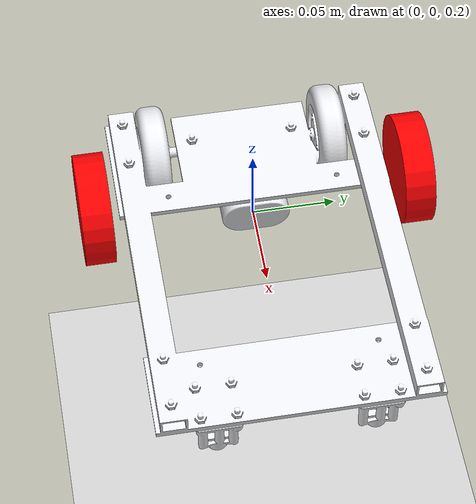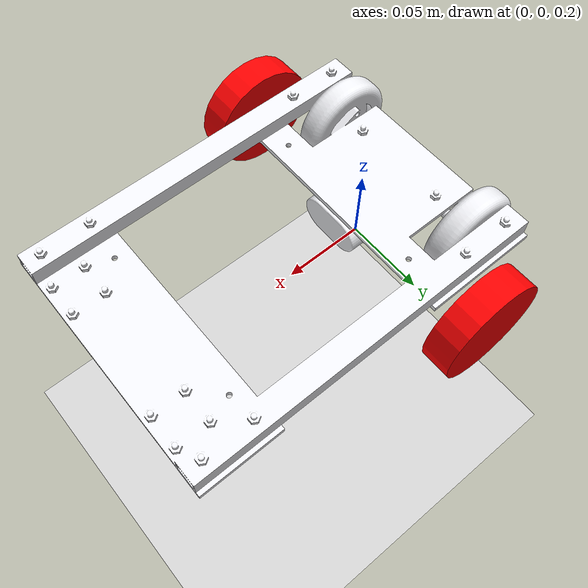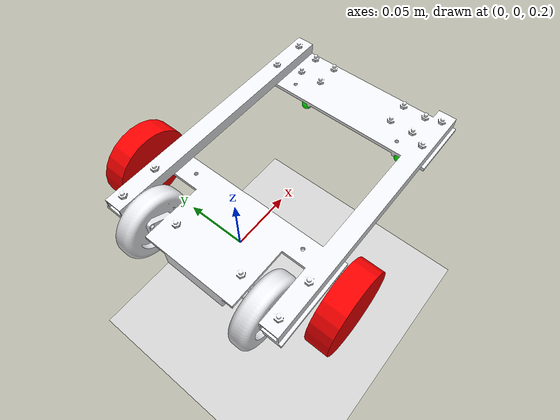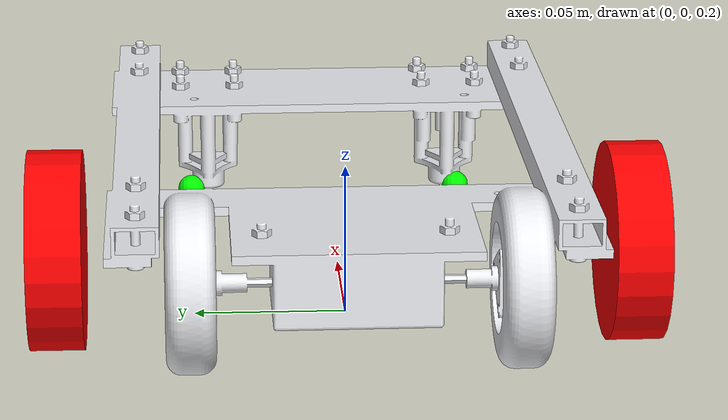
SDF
<?xml version="1.0" ?>
<sdf version="1.8"> <!--xmlとsdfのバージョン定義-->
    <world name="WorldDemo"> <!--ワールドの内容は全てこのタグの中に-->
        <physics name="1ms" type="ode">
            <max_step_size>0.001</max_step_size> <!--最大何秒ごとにシミュレートするか（小さいほど正確なシミュレーションになる）-->
            <real_time_factor>1.0</real_time_factor> <!--現実時間との比率-->
        </physics>
        <plugin
            filename="libignition-gazebo-physics-system.so"
            name="ignition::gazebo::systems::Physics">
        </plugin> <!--動力学のシミュレーションに必要-->
        <plugin
            filename="libignition-gazebo-user-commands-system.so"
            name="ignition::gazebo::systems::UserCommands">
        </plugin> <!--ユーザーコマンドを利用可能に-->
        <plugin
            filename="libignition-gazebo-scene-broadcaster-system.so"
            name="ignition::gazebo::systems::SceneBroadcaster">
        </plugin> <!--ワールドシーンの描画-->

        <plugin filename="libignition-gazebo-triggered-publisher-system.so"
                name="ignition::gazebo::systems::TriggeredPublisher">
            <input type="ignition.msgs.Int32" topic="/keyboard/keypress"> <!--受信するトピックを指定-->
                <match field="data">16777235</match> <!--↑キーに一致するという条件を指定-->
            </input>
            <output type="ignition.msgs.Twist" topic="/cmd_vel"> <!--送信するトピックを指定-->
                linear: {x: 0.5}, angular: {z: 0.0} <!--トピックの内容を指定-->
            </output>
        </plugin>
        <!-- Moving Backward-->
        <plugin filename="libignition-gazebo-triggered-publisher-system.so"
                name="ignition::gazebo::systems::TriggeredPublisher">
            <input type="ignition.msgs.Int32" topic="/keyboard/keypress">
                <match field="data">16777237</match>
            </input>
            <output type="ignition.msgs.Twist" topic="/cmd_vel">
                linear: {x: -0.5}, angular: {z: 0.0}
            </output>
        </plugin>
        <plugin filename="libignition-gazebo-triggered-publisher-system.so"
                name="ignition::gazebo::systems::TriggeredPublisher">
            <input type="ignition.msgs.Int32" topic="/keyboard/keypress">
                <match field="data">16777236</match>
            </input>
            <output type="ignition.msgs.Twist" topic="/cmd_vel">
                linear: {x: 0.0}, angular: {z: -0.5}
            </output>
        </plugin>
        <plugin filename="libignition-gazebo-triggered-publisher-system.so"
                name="ignition::gazebo::systems::TriggeredPublisher">
            <input type="ignition.msgs.Int32" topic="/keyboard/keypress">
                <match field="data">16777234 </match>
            </input>
            <output type="ignition.msgs.Twist" topic="/cmd_vel">
                linear: {x: 0.0}, angular: {z: 0.5}
            </output>
        </plugin>

        <!--光に関する設定-->
        <light type="directional" name="sun"> <!--pointかdirectional、spot.-->
            <cast_shadows>true</cast_shadows> <!--trueなら影ができる-->
            <pose>0 0 10 0 0 0</pose> <!--位置 relative_to attributeを追加できる、しなければworldに関連付けられる-->
            <diffuse>0.8 0.8 0.8 1</diffuse>
            <specular>0.2 0.2 0.2 1</specular>
            <attenuation>
                <range>1000</range><!--光の範囲-->
                <constant>0.9</constant><!--減衰係数0-1、1は減衰しない-->
                <linear>0.01</linear><!--線形減衰係数0-1、1は距離について均等に減衰-->
                <quadratic>0.001</quadratic><!--光の方向性、pointには適用されない-->
            </attenuation>
            <direction>-0.5 0.1 -0.9</direction>
        </light>

        <model name="ground_plane">
          <static>true</static>
          <link name="link">
              <collision name="collision">
              <geometry>
                  <plane>
                  <normal>0 0 1</normal>
                  </plane>
              </geometry>
              </collision>
              <visual name="visual">
              <geometry>
                  <plane>
                  <normal>0 0 1</normal>
                  <size>100 100</size>
                  </plane>
              </geometry>
              <material>
                  <ambient>0.8 0.8 0.8 1</ambient>
                  <diffuse>0.8 0.8 0.8 1</diffuse>
                  <specular>0.8 0.8 0.8 1</specular>
              </material>
              </visual>
          </link>
      </model>

      <model name="demoRobot">
        <!--モデルが地面にめり込まないように少し浮かせています-->
        <pose>0 0 0.2 0 0 0</pose>
          <link name="base_link">
            <inertial>
              <pose>0.1 0 0 0 0 0</pose>
              <inertia>
                <ixx>4.2111447e-02</ixx>
                <ixy>0</ixy>
                <ixz>0</ixz>
                <iyy>4.2111447e-02</iyy>
                <iyz>0</iyz>
                <izz>7.5254874e-02</izz>
              </inertia>
              <mass>1.3729096e+00</mass>
            </inertial>
            <collision name="base_collision">
              <!--重心の位置を調整しています-->
              <pose>-0.064 0.08 0.06 0 0 -1.57</pose>
              <geometry>
                <mesh>
                  <uri>model://meshes/2DRoboPrac.stl</uri>
                </mesh>
              </geometry>
            </collision>
            <visual name="base_visual">
              <!--重心の位置を調整しています-->
              <pose>-0.064 0.08 0.06 0 0 -1.57</pose>
              <geometry>
                <mesh>
                  <uri>model://meshes/2DRoboPrac.dae</uri>
                </mesh>
              </geometry>
              <material>
                <diffuse> 0.921568627 0.925490196 0.941176471 1</diffuse>
                <ambient> 0.921568627 0.925490196 0.941176471 1</ambient>
                <specular>0.921568627 0.925490196 0.941176471 1</specular>
              </material>
            </visual>
          </link>

          <!-- Wheel left -->
          <link name="wheel_left_link">
            <pose>0.0 0.095 0.023 -1.57 0 0</pose>
            <inertial>
              <inertia>
                <ixx>1.1175580e-05</ixx>
                <ixy>-4.2369783e-11</ixy>
                <ixz>-5.9381719e-09</ixz>
                <iyy>1.1192413e-05</iyy>
                <iyz>-1.4400107e-11</iyz>
                <izz>2.0712558e-05</izz>
              </inertia>
              <mass>0.1</mass>
            </inertial>
            <collision name="wheel_left_collision">
              <geometry>
                <cylinder>
                  <radius>0.033</radius>
                  <length>0.018</length>
                </cylinder>
              </geometry>
            </collision>
            <visual name="wheel_left_visual">
              <geometry>
                <cylinder>
                  <radius>0.033</radius>
                  <length>0.018</length>
                </cylinder>
                </geometry>
                <material>
                  <ambient>1.0 0.0 0.0 1</ambient>
                  <diffuse>1.0 0.0 0.0 1</diffuse>
                  <specular>1.0 0.0 0.0 1</specular>
                </material>
            </visual>
          </link>
          <joint name="wheel_left_joint" type="revolute">
            <parent>base_link</parent>
            <child>wheel_left_link</child>
            <axis>
              <xyz>0 0 1</xyz>
            </axis>
          </joint>

          <!-- Wheel right -->
          <link name="wheel_right_link">
            <pose>0.0 -0.095 0.023 -1.57 0 0</pose>
            <inertial>
              <inertia>
                <ixx>1.1175580e-05</ixx>
                <ixy>-4.2369783e-11</ixy>
                <ixz>-5.9381719e-09</ixz>
                <iyy>1.1192413e-05</iyy>
                <iyz>-1.4400107e-11</iyz>
                <izz>2.0712558e-05</izz>
              </inertia>
              <mass>0.1</mass>
            </inertial>
            <collision name="wheel_right_collision">
              <geometry>
                <cylinder>
                  <radius>0.033</radius>
                  <length>0.018</length>
                </cylinder>
              </geometry>
            </collision>
            <visual name="wheel_right_visual">
              <geometry>
                <cylinder>
                  <radius>0.033</radius>
                  <length>0.018</length>
                </cylinder>
                </geometry>
                <material>
                  <ambient>1.0 0.0 0.0 1</ambient>
                  <diffuse>1.0 0.0 0.0 1</diffuse>
                  <specular>1.0 0.0 0.0 1</specular>
                </material>
              <material>
                <diffuse> 0.145098039 0.156862745 0.164705882 1</diffuse>
                <ambient> 0.145098039 0.156862745 0.164705882 1</ambient>
                <specular>0.145098039 0.156862745 0.164705882 1</specular>
              </material>
            </visual>
          </link>
          <joint name="wheel_right_joint" type="revolute">
            <parent>base_link</parent>
            <child>wheel_right_link</child>
            <axis>
              <xyz>0 0 1</xyz>
            </axis>
          </joint>

          <link name='caster_back_right_link'>
            <pose>0.15 -0.05 -0.004 -1.57 0 0</pose>
            <inertial>
              <mass>0.001</mass>
              <inertia>
                <ixx>0.00001</ixx>
                <ixy>0.000</ixy>
                <ixz>0.000</ixz>
                <iyy>0.00001</iyy>
                <iyz>0.000</iyz>
                <izz>0.00001</izz>
              </inertia>
            </inertial>
            <visual name='caster_back_right_visual'>
                <geometry>
                    <sphere>
                        <radius>0.005</radius>
                    </sphere>
                </geometry>
                <material>
                    <ambient>0.0 1 0.0 1</ambient>
                    <diffuse>0.0 1 0.0 1</diffuse>
                    <specular>0.0 1 0.0 1</specular>
                </material>
              </visual>
            <collision name='collision'>
              <geometry>
                <sphere>
                  <radius>0.005</radius>
                </sphere>
              </geometry>
            </collision>
          </link>
          <joint name='caster_back_right_joint' type='ball'>
            <parent>base_link</parent>
            <child>caster_back_right_link</child>
          </joint>

          <link name='caster_back_left_link'>
            <pose>0.15 0.05 -0.004 -1.57 0 0</pose>
            <inertial>
              <mass>0.001</mass>
              <inertia>
                <ixx>0.00001</ixx>
                <ixy>0.000</ixy>
                <ixz>0.000</ixz>
                <iyy>0.00001</iyy>
                <iyz>0.000</iyz>
                <izz>0.00001</izz>
              </inertia>
            </inertial>
            <visual name='caster_back_left_visual'>
                <geometry>
                    <sphere>
                        <radius>0.005</radius>
                    </sphere>
                </geometry>
                <material>
                    <ambient>0.0 1 0.0 1</ambient>
                    <diffuse>0.0 1 0.0 1</diffuse>
                    <specular>0.0 1 0.0 1</specular>
                </material>
              </visual>
            <collision name='collision'>
              <geometry>
                <sphere>
                  <radius>0.005</radius>
                </sphere>
              </geometry>
            </collision>
          </link>
          <joint name='caster_back_left_joint' type='ball'>
            <parent>base_link</parent>
            <child>caster_back_left_link</child>
          </joint>

          <!-- Differential drive -->
          <plugin filename="libignition-gazebo-diff-drive-system.so"
            name="ignition::gazebo::systems::DiffDrive">
            <left_joint>wheel_left_joint</left_joint>
            <right_joint>wheel_right_joint</right_joint>
            <wheel_separation>0.19</wheel_separation>
            <wheel_radius>0.033</wheel_radius>
            <topic>cmd_vel</topic>
          </plugin>
        </model>

        <plugin filename="libignition-gazebo-triggered-publisher-system.so"
            name="ignition::gazebo::systems::TriggeredPublisher">
            <input type="ignition.msgs.Int32" topic="/keyboard/keypress"> <!--受信するトピックを指定-->
                <match field="data">16777235</match> <!--↑キーに一致するという条件を指定-->
            </input>
            <output type="ignition.msgs.Twist" topic="/cmd_vel"> <!--送信するトピックを指定-->
                linear: {x: 0.5}, angular: {z: 0.0} <!--トピックの内容を指定-->
            </output>
        </plugin>
    </world>
</sdf>
